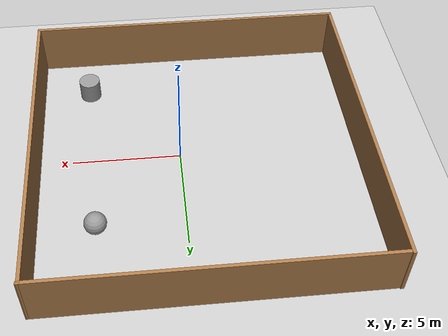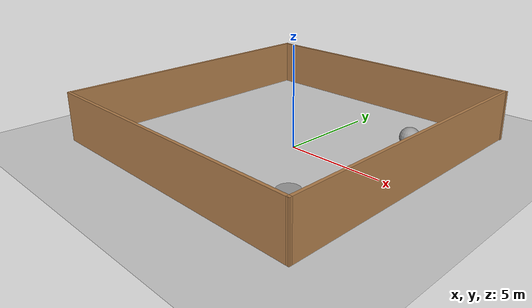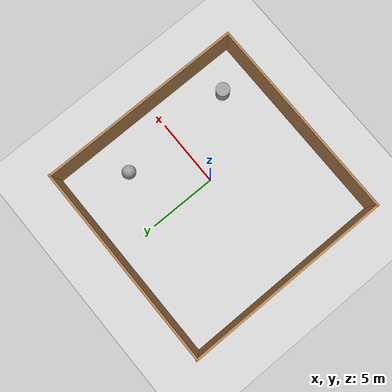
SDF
<sdf version="1.7">
 <world name="default">
  <plugin name="gazebo_ros_state" filename="libgazebo_ros_state.so"/>
  <light name="sun" type="directional">
   <pose>0 0 10 0 -0 0</pose>
   <diffuse>0.8 0.8 0.8 1</diffuse>
   <specular>0.2 0.2 0.2 1</specular>
   <attenuation>
    <range>1000</range>
    <constant>0.9</constant>
    <linear>0.01</linear>
    <quadratic>0.001</quadratic>
   </attenuation>
   <direction>-0.5 0.1 -0.9</direction>
   <spot><inner_angle>0</inner_angle><outer_angle>0</outer_angle><falloff>0</falloff></spot>
  </light>
  <model name="ground_plane">
   <static>1</static>
   <link name="link">
    <collision name="collision">
     <geometry><plane><normal>0 0 1</normal><size>100 100</size></plane></geometry>
     <surface>
      <contact><collide_bitmask>65535</collide_bitmask></contact>
      <friction><ode><mu>100</mu><mu2>50</mu2></ode></friction>
     </surface>
    </collision>
    <visual name="visual">
     <cast_shadows>0</cast_shadows>
     <geometry><plane><normal>0 0 1</normal><size>100 100</size></plane></geometry>
     <material>
      <script><uri>file://media/materials/scripts/gazebo.material</uri><name>Gazebo/Grey</name></script>
     </material>
    </visual>
   </link>
  </model>
  <gravity>0 0 -9.8</gravity>
  <magnetic_field>6e-06 2.3e-05 -4.2e-05</magnetic_field>
  <atmosphere type="adiabatic"/>
  <physics type="ode">
   <max_step_size>0.001</max_step_size>
   <real_time_factor>1</real_time_factor>
   <real_time_update_rate>1000</real_time_update_rate>
  </physics>
  <scene><ambient>0.4 0.4 0.4 1</ambient><background>0.7 0.7 0.7 1</background><shadows>1</shadows></scene>
  <audio><device>default</device></audio>
  <spherical_coordinates>
   <surface_model>EARTH_WGS84</surface_model>
   <latitude_deg>0</latitude_deg>
   <longitude_deg>0</longitude_deg>
   <elevation>0</elevation>
   <heading_deg>0</heading_deg>
  </spherical_coordinates>
  <model name="walls">
   <pose>-0.86907 0.52028 0 0 -0 0</pose>
   <link name="Wall_0">
    <collision name="Wall_0_Collision">
     <geometry><box><size>15 0.15 2.5</size></box></geometry>
     <pose>0 0 1.25 0 -0 0</pose>
    </collision>
    <visual name="Wall_0_Visual">
     <pose>0 0 1.25 0 -0 0</pose>
     <geometry><box><size>15 0.15 2.5</size></box></geometry>
     <material>
      <script><uri>file://media/materials/scripts/gazebo.material</uri><name>Gazebo/Wood</name></script>
      <ambient>1 1 1 1</ambient>
     </material>
     <meta><layer>0</layer></meta>
    </visual>
    <pose>0.00335 -7.46973 0 0 -0 0</pose>
   </link>
   <link name="Wall_1">
    <collision name="Wall_1_Collision">
     <geometry><box><size>15.0487 0.15 2.5</size></box></geometry>
     <pose>0 0 1.25 0 -0 0</pose>
    </collision>
    <visual name="Wall_1_Visual">
     <pose>0 0 1.25 0 -0 0</pose>
     <geometry><box><size>15.0487 0.15 2.5</size></box></geometry>
     <material>
      <script><uri>file://media/materials/scripts/gazebo.material</uri><name>Gazebo/Wood</name></script>
      <ambient>1 1 1 1</ambient>
     </material>
     <meta><layer>0</layer></meta>
    </visual>
    <pose>7.42177 -0.020393 0 0 -0 1.57168</pose>
   </link>
   <link name="Wall_3">
    <collision name="Wall_3_Collision">
     <geometry><box><size>15.0619 0.15 2.5</size></box></geometry>
     <pose>0 0 1.25 0 -0 0</pose>
    </collision>
    <visual name="Wall_3_Visual">
     <pose>0 0 1.25 0 -0 0</pose>
     <geometry><box><size>15.0619 0.15 2.5</size></box></geometry>
     <material>
      <script><uri>file://media/materials/scripts/gazebo.material</uri><name>Gazebo/Wood</name></script>
      <ambient>1 1 1 1</ambient>
     </material>
     <meta><layer>0</layer></meta>
    </visual>
    <pose>3.3e-05 7.42894 0 0 -0 0</pose>
   </link>
   <link name="Wall_5">
    <collision name="Wall_5_Collision">
     <geometry><box><size>15.0487 0.15 2.5</size></box></geometry>
     <pose>0 0 1.25 0 -0 0</pose>
    </collision>
    <visual name="Wall_5_Visual">
     <pose>0 0 1.25 0 -0 0</pose>
     <geometry><box><size>15.0487 0.15 2.5</size></box></geometry>
     <material>
      <script><uri>file://media/materials/scripts/gazebo.material</uri><name>Gazebo/Wood</name></script>
      <ambient>1 1 1 1</ambient>
     </material>
     <meta><layer>0</layer></meta>
    </visual>
    <pose>-7.44934 0.020394 0 0 -0 -1.56991</pose>
   </link>
   <static>1</static>
  </model>
  <model name="unit_cylinder">
   <pose>4.19153 -4.58053 0.5 0 -0 0</pose>
   <link name="link">
    <inertial>
     <mass>1</mass>
     <inertia><ixx>0.145833</ixx><ixy>0</ixy><ixz>0</ixz><iyy>0.145833</iyy><iyz>0</iyz><izz>0.125</izz></inertia>
    </inertial>
    <collision name="collision">
     <geometry><cylinder><radius>0.5</radius><length>1</length></cylinder></geometry>
    </collision>
    <visual name="visual">
     <geometry><cylinder><radius>0.5</radius><length>1</length></cylinder></geometry>
     <material>
      <script><name>Gazebo/Grey</name><uri>file://media/materials/scripts/gazebo.material</uri></script>
     </material>
    </visual>
   </link>
  </model>
  <model name="unit_sphere">
   <pose>3.92728 3.96396 0.5 0 -0 0</pose>
   <link name="link">
    <inertial>
     <mass>1</mass>
     <inertia><ixx>0.1</ixx><ixy>0</ixy><ixz>0</ixz><iyy>0.1</iyy><iyz>0</iyz><izz>0.1</izz></inertia>
    </inertial>
    <collision name="collision"><geometry><sphere><radius>0.5</radius></sphere></geometry></collision>
    <visual name="visual">
     <geometry><sphere><radius>0.5</radius></sphere></geometry>
     <material>
      <script><name>Gazebo/Grey</name><uri>file://media/materials/scripts/gazebo.material</uri></script>
     </material>
    </visual>
   </link>
  </model>
 </world>
</sdf>
